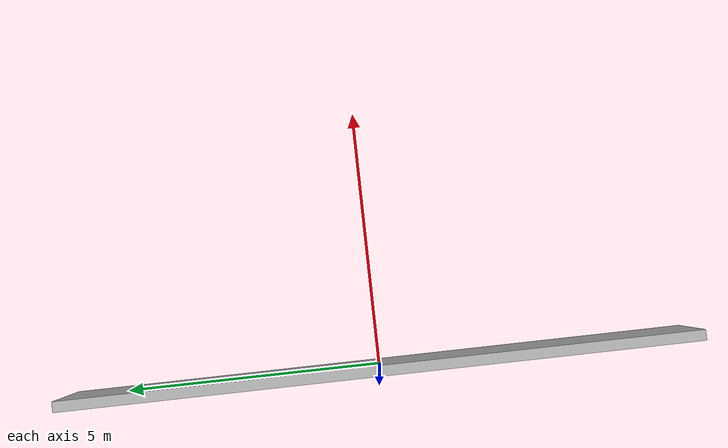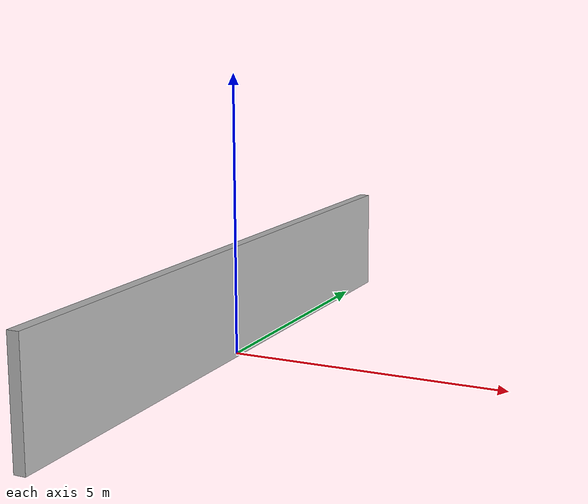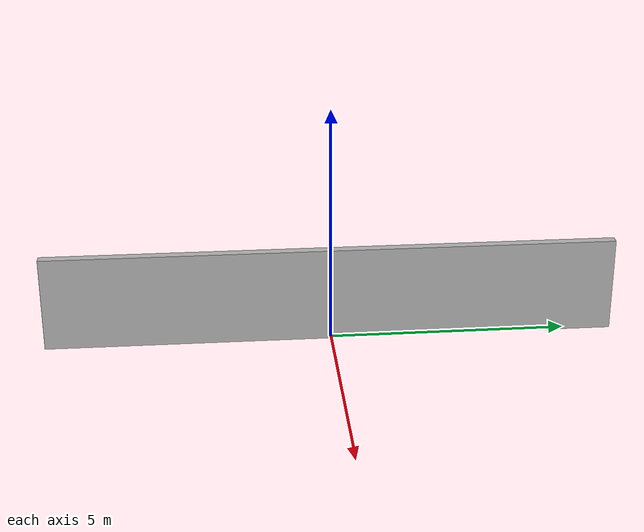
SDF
<?xml version="1.0" ?>
<sdf version="1.6">
  <model name="floor">
    <pose>0 0 0 0 0 0</pose>
    <static>1</static>
    <link name="link">
      <inertial>
        <mass>12</mass>
      </inertial>
      <collision name="collision">
        <geometry>
          <box>
            <size>0.2 12 4</size>
          </box>
        </geometry>
      </collision>
      <visual name="visual">
        <pose>0 0 0 0 0 0</pose>
        <geometry>
          <mesh>
            <uri>model://wall/meshes/wall.dae</uri>
            <scale>1 1 1</scale>
          </mesh>
        </geometry>
      </visual>
    </link>
  </model>
</sdf>
